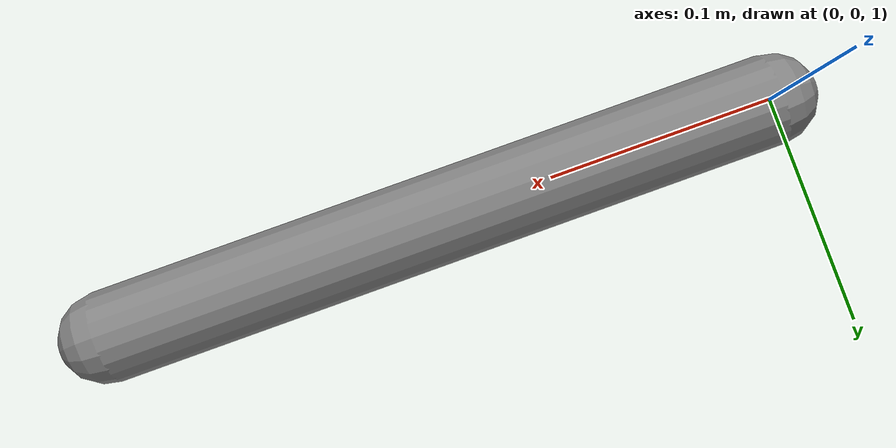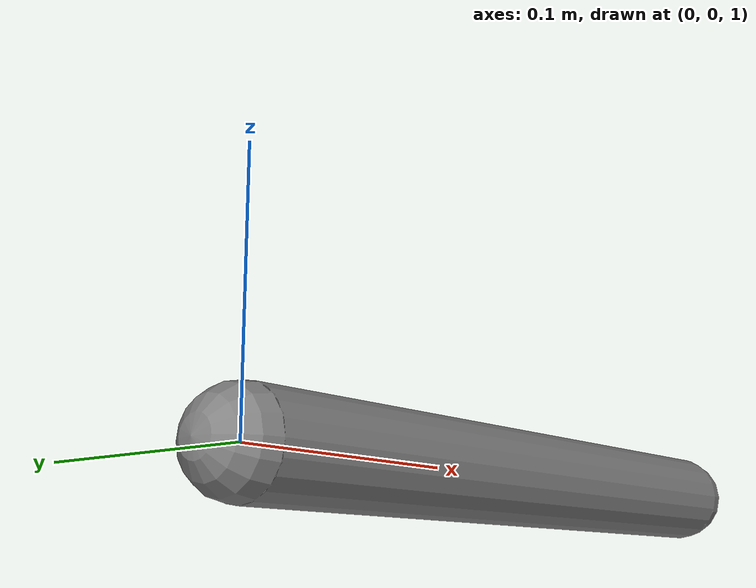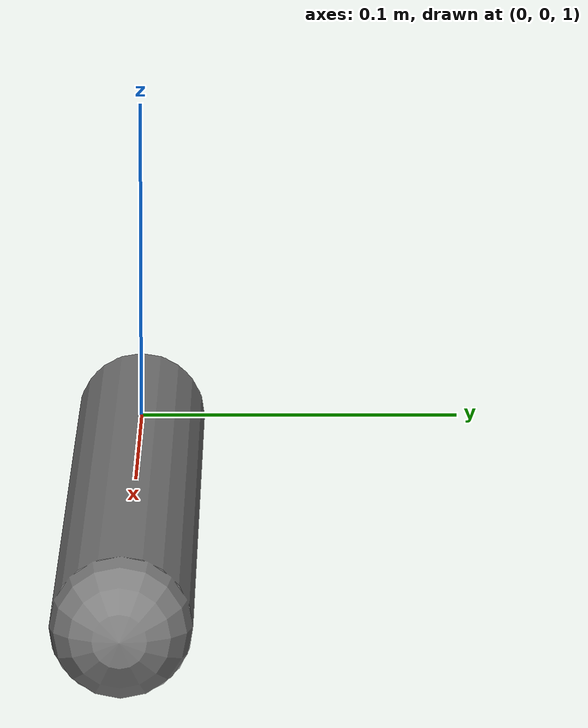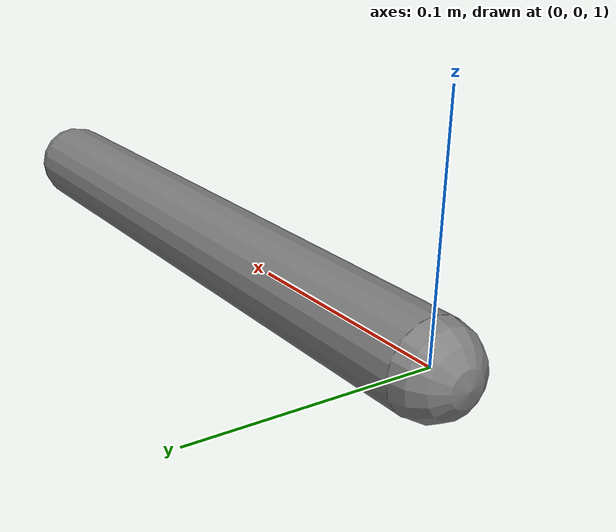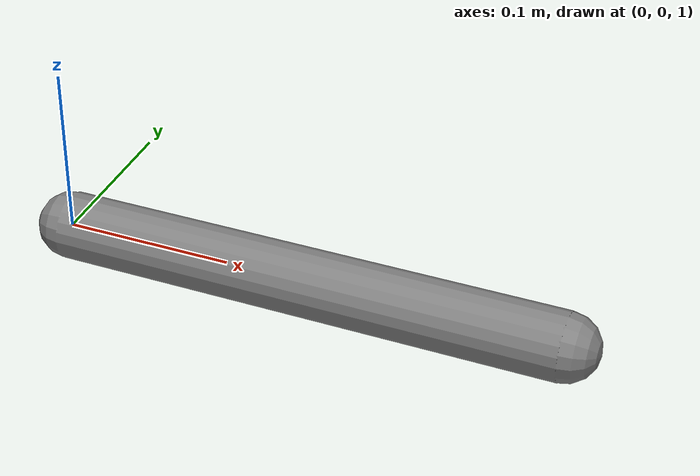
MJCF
<mujoco model="axes-mag">
  <option gravity="0 0 0" timestep="0.001" magnetic="0 0 -0.5"/>
  <compiler angle="radian"/>
  <worldbody>
    <body name="spinner" pos="0 0 1">
      <joint name="hinge" type="hinge" axis="0 0 1" damping="0"/>
      <geom type="capsule" size="0.02" fromto="0 0 0 0.3 0 0" mass="0.5"/>
      <site name="s1" pos="0.2 0 0"/>
    </body>
  </worldbody>
  <actuator>
    <velocity name="motor" joint="hinge" kv="50"/>
  </actuator>
  <sensor>
    <framexaxis name="xaxis" objtype="site" objname="s1"/>
    <frameyaxis name="yaxis" objtype="site" objname="s1"/>
    <framezaxis name="zaxis" objtype="site" objname="s1"/>
    <magnetometer name="mag" site="s1"/>
  </sensor>
</mujoco>
